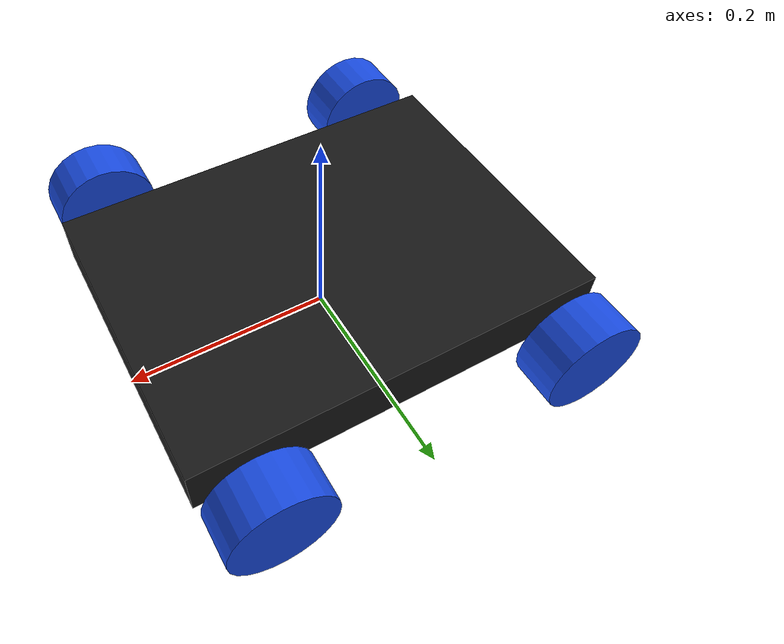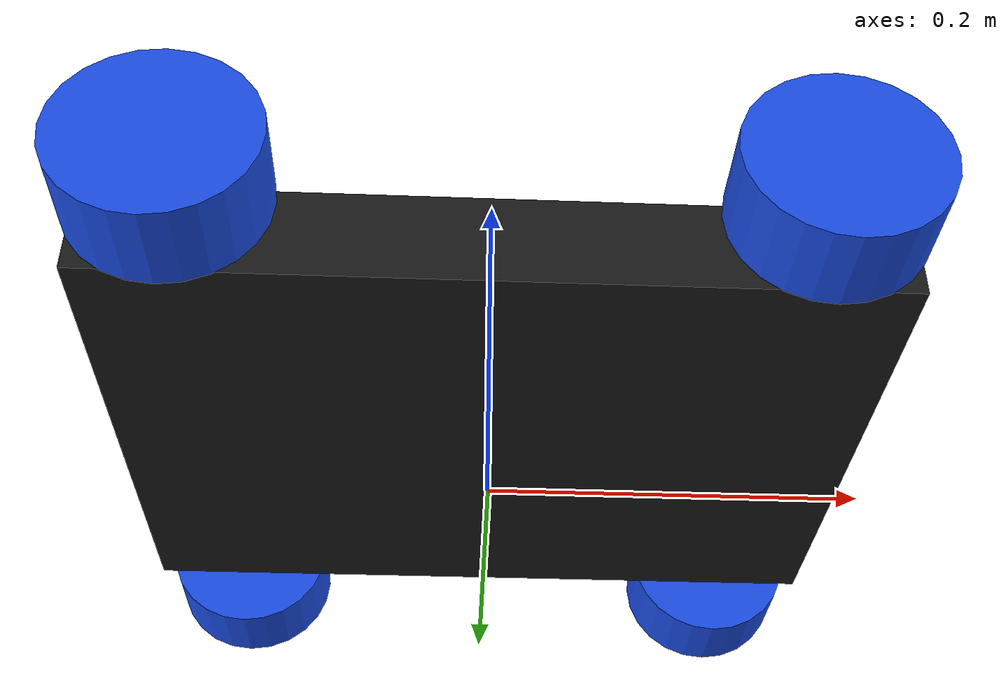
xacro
<?xml version="1.0"?>
<robot xmlns:xacro="http://www.ros.org/wiki/xacro">
  <xacro:include filename="inertial_macros.xacro" />

  <xacro:property name="chassis_length" value="0.40" />
  <xacro:property name="chassis_width" value="0.30" />
  <xacro:property name="chassis_thickness" value="0.05" />
  <xacro:property name="wheel_radius" value="0.0485" />
  <xacro:property name="wheel_width" value="0.045" />
  <xacro:property name="wheel_x" value="0.15" />
  <xacro:property name="wheel_y" value="0.1925" />

  <material name="dark_grey"><color rgba="0.1 0.1 0.1 1" /></material>
  <material name="blue"><color rgba="0.1 0.3 0.9 1" /></material>

  <link name="base_link" />

  <joint name="chassis_joint" type="fixed">
    <parent link="base_link" />
    <child link="chassis" />
    <origin xyz="0 0 ${wheel_radius}" />
  </joint>

  <link name="chassis">
    <visual>
      <origin xyz="0 0 0" />
      <geometry><box size="${chassis_length} ${chassis_width} ${chassis_thickness}" /></geometry>
      <material name="dark_grey" />
    </visual>
    <collision>
      <origin xyz="0 0 0" />
      <geometry><box size="${chassis_length} ${chassis_width} ${chassis_thickness}" /></geometry>
    </collision>
    <xacro:inertial_box mass="2.0" x="${chassis_length}" y="${chassis_width}" z="${chassis_thickness}" />
  </link>

  <gazebo reference="chassis">
    <material>Gazebo/DarkGrey</material>
  </gazebo>

  <xacro:macro name="mecanum_wheel" params="name x y">
    <joint name="${name}_wheel_joint" type="continuous">
      <parent link="base_link" />
      <child link="${name}_wheel" />
      <origin xyz="${x} ${y} ${wheel_radius}" />
      <axis xyz="0 1 0" />
      <dynamics damping="0.01" friction="0.01"/>
    </joint>

    <link name="${name}_wheel">
      <visual>
        <origin rpy="${pi / 2.0} 0 0" />
        <geometry><cylinder radius="${wheel_radius}" length="${wheel_width}" /></geometry>
        <material name="blue" />
      </visual>
      <collision>
        <origin rpy="${pi / 2.0} 0 0" />
        <geometry><cylinder radius="${wheel_radius}" length="${wheel_width}" /></geometry>
      </collision>
      <xacro:inertial_cylinder mass="0.2" length="${wheel_width}" radius="${wheel_radius}" />
    </link>

    <gazebo reference="${name}_wheel">
      <material>Gazebo/Blue</material>
      <mu1>1.0</mu1>
      <mu2>1.0</mu2>
      <kp>1e6</kp>
      <kd>1.0</kd>
    </gazebo>
  </xacro:macro>

  <xacro:mecanum_wheel name="front_left" x="${wheel_x}" y="${wheel_y}" />
  <xacro:mecanum_wheel name="front_right" x="${wheel_x}" y="-${wheel_y}" />
  <xacro:mecanum_wheel name="rear_left" x="-${wheel_x}" y="${wheel_y}" />
  <xacro:mecanum_wheel name="rear_right" x="-${wheel_x}" y="-${wheel_y}" />
</robot>

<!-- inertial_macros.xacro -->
<robot xmlns:xacro="http://www.ros.org/wiki/xacro">

  <xacro:macro name="inertial_box" params="mass x y z">
    <inertial>
      <mass value="${mass}"/>
      <inertia ixx="${(mass/12.0) * (y*y + z*z)}" ixy="0.0" ixz="0.0"
               iyy="${(mass/12.0) * (x*x + z*z)}" iyz="0.0"
               izz="${(mass/12.0) * (x*x + y*y)}"/>
    </inertial>
  </xacro:macro>

  <xacro:macro name="inertial_cylinder" params="mass length radius">
    <inertial>
      <mass value="${mass}"/>
      <inertia ixx="${(mass/12.0) * (3*radius*radius + length*length)}" ixy="0.0" ixz="0.0"
               iyy="${(mass/12.0) * (3*radius*radius + length*length)}" iyz="0.0"
               izz="${(mass/2.0) * (radius*radius)}"/>
    </inertial>
  </xacro:macro>

</robot>
